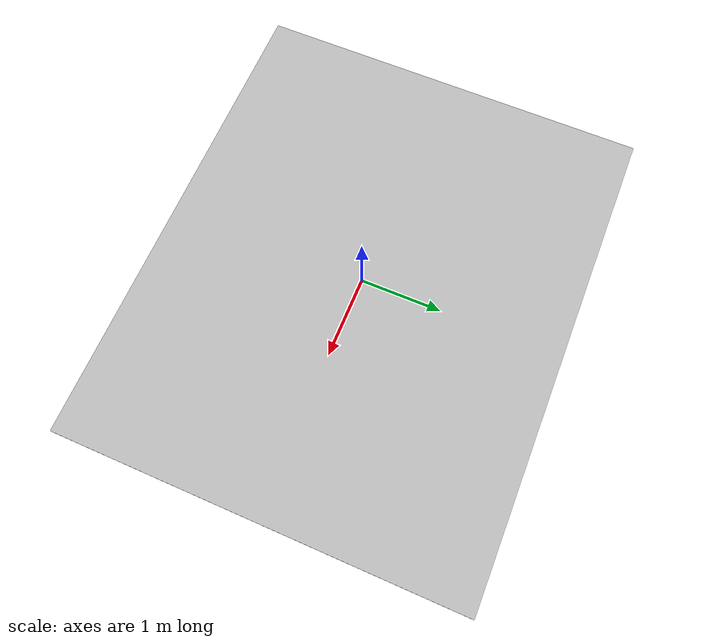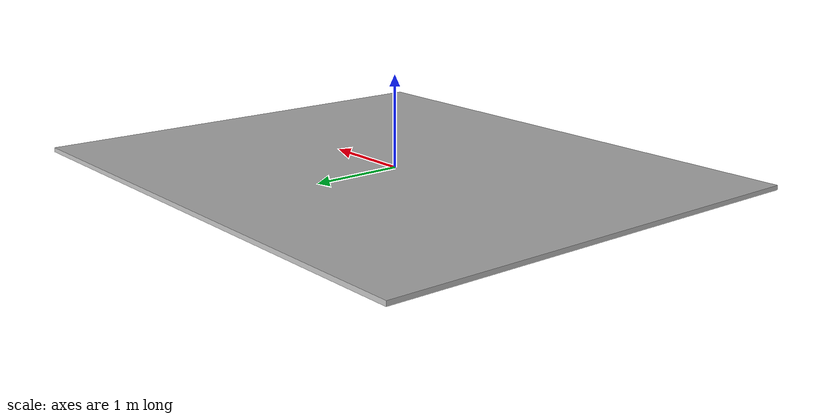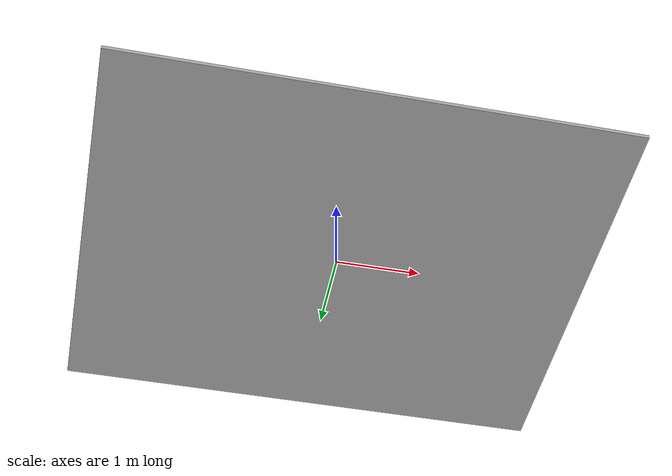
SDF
<?xml version='1.0'?>
<sdf version='1.7'>
  <model name='klt_world'>
    <model name='bots_bento_arena'>
      <static>1</static>
      <link name='link'>
        <collision name='collision'>
          <geometry>
            <box>
              <size>6 5 0.05</size>
              <normal>0 0 1</normal>
              <scale>1 1 1</scale>
            </box>
          </geometry>
          <surface>
            <friction>
              <ode>
                <mu>100</mu>
                <mu2>50</mu2>
              </ode>
            </friction>
          </surface>
        </collision>
        <visual name='visual'>
          <cast_shadows>0</cast_shadows>
          <geometry>
            <box>
              <size>6 5 0.05</size>
              <normal>0 0 1</normal>
              <scale>1 1 1</scale>
            </box>
          </geometry>
          <material>
            <script>
              <uri>model://bots_bento_arena/materials/scripts/bots_bento_arena.material</uri>
              <uri>model://bots_bento_arena/materials/textures/</uri>
              <name>bots_bento_arena/Image</name>
            </script>
          </material>
        </visual>
      </link>
      <pose>-0 0 0 0 -0 0</pose>
    </model>
    <static>0</static>
    <allow_auto_disable>1</allow_auto_disable>
  </model>
</sdf>
